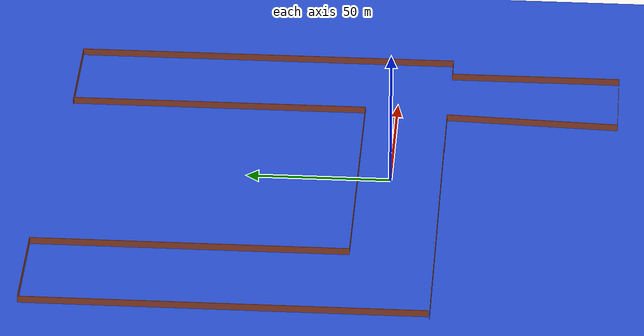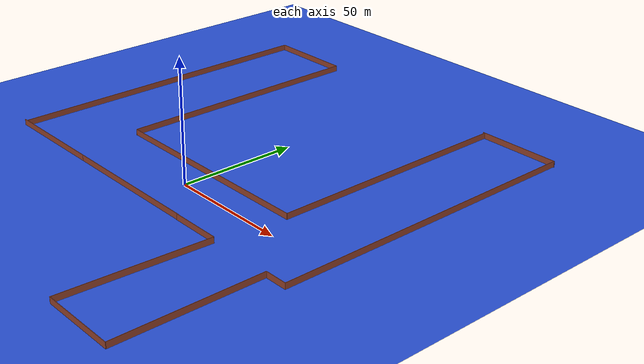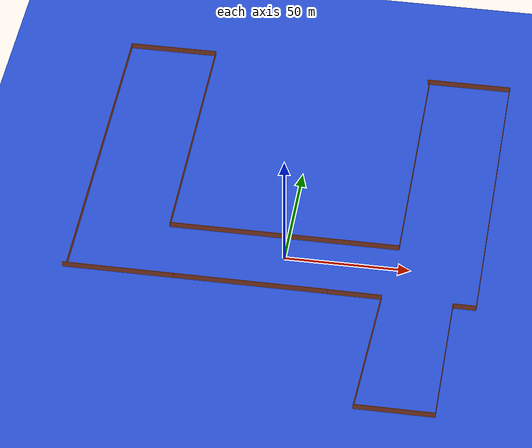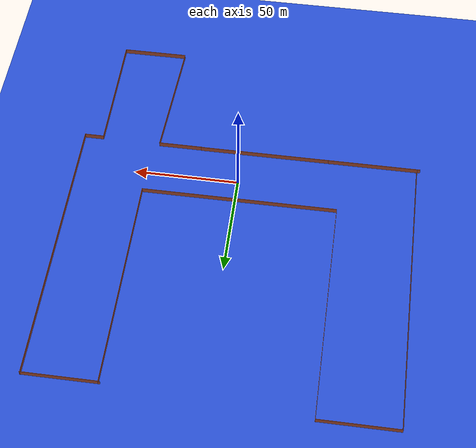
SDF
<sdf version="1.7">
 <world name="default">
  <light name="sun" type="directional">
   <pose>0 0 10 0 -0 0</pose>
   <diffuse>0.8 0.8 0.8 1</diffuse>
   <specular>0.2 0.2 0.2 1</specular>
   <attenuation>
    <range>1000</range>
    <constant>0.9</constant>
    <linear>0.01</linear>
    <quadratic>0.001</quadratic>
   </attenuation>
   <direction>-0.5 0.1 -0.9</direction>
   <spot><inner_angle>0</inner_angle><outer_angle>0</outer_angle><falloff>0</falloff></spot>
  </light>
  <model name="ground_plane">
   <static>1</static>
   <link name="link">
    <collision name="collision">
     <geometry><plane><normal>0 0 1</normal><size>500 500</size></plane></geometry>
     <surface>
      <contact><collide_bitmask>65535</collide_bitmask></contact>
      <friction><ode><mu>100</mu><mu2>50</mu2></ode></friction>
     </surface>
    </collision>
    <visual name="visual">
     <cast_shadows>0</cast_shadows>
     <geometry><plane><normal>0 0 1</normal><size>500 500</size></plane></geometry>
     <material>
      <script><uri>file://media/materials/scripts/gazebo.material</uri><name>Gazebo/BlueTransparent</name></script>
     </material>
    </visual>
   </link>
  </model>
  <gravity>0 0 -9.8</gravity>
  <magnetic_field>6e-06 2.3e-05 -4.2e-05</magnetic_field>
  <atmosphere type="adiabatic"/>
  <physics type="ode">
   <max_step_size>0.001</max_step_size>
   <real_time_factor>1</real_time_factor>
   <real_time_update_rate>1000</real_time_update_rate>
  </physics>
  <scene>
   <ambient>0.4 0.4 0.4 1</ambient>
   <background>0.7 0.7 0.7 1</background>
   <shadows>1</shadows>
   <grid>0</grid>
  </scene>
  <spherical_coordinates>
   <surface_model>EARTH_WGS84</surface_model>
   <latitude_deg>0</latitude_deg>
   <longitude_deg>0</longitude_deg>
   <elevation>0</elevation>
   <heading_deg>0</heading_deg>
  </spherical_coordinates>
  <model name="canal1_0">
   <pose>1.06193 21.2725 0 0 -0 0</pose>
   <link name="Wall_0">
    <collision name="Wall_0_Collision">
     <geometry><box><size>62.25 0.15 2.5</size></box></geometry>
     <pose>0 0 1.25 0 -0 0</pose>
    </collision>
    <visual name="Wall_0_Visual">
     <pose>0 0 1.25 0 -0 0</pose>
     <geometry><box><size>62.25 0.15 2.5</size></box></geometry>
     <material>
      <script><uri>file://media/materials/scripts/gazebo.material</uri><name>Gazebo/Bricks</name></script>
      <ambient>1 1 1 1</ambient>
     </material>
     <meta><layer>0</layer></meta>
    </visual>
    <pose>-11.7789 -38.8909 0 0 -0 3.14159</pose>
   </link>
   <link name="Wall_1">
    <collision name="Wall_1_Collision">
     <geometry><box><size>44.5 0.15 2.5</size></box></geometry>
     <pose>0 0 1.25 0 -0 0</pose>
    </collision>
    <visual name="Wall_1_Visual">
     <pose>0 0 1.25 0 -0 0</pose>
     <geometry><box><size>44.5 0.15 2.5</size></box></geometry>
     <material>
      <script><uri>file://media/materials/scripts/gazebo.material</uri><name>Gazebo/Bricks</name></script>
      <ambient>1 1 1 1</ambient>
     </material>
     <meta><layer>0</layer></meta>
    </visual>
    <pose>-65.0039 -38.8909 0 0 -0 3.14159</pose>
   </link>
   <link name="Wall_10">
    <collision name="Wall_10_Collision">
     <geometry><box><size>9 0.15 2.5</size></box></geometry>
     <pose>0 0 1.25 0 -0 0</pose>
    </collision>
    <visual name="Wall_10_Visual">
     <pose>0 0 1.25 0 -0 0</pose>
     <geometry><box><size>9 0.15 2.5</size></box></geometry>
     <material>
      <script><uri>file://media/materials/scripts/gazebo.material</uri><name>Gazebo/Bricks</name></script>
      <ambient>1 1 1 1</ambient>
     </material>
     <meta><layer>0</layer></meta>
    </visual>
    <pose>72.6289 -39.6232 0 0 -0 3.14159</pose>
   </link>
   <link name="Wall_11">
    <collision name="Wall_11_Collision">
     <geometry><box><size>59.75 0.15 2.5</size></box></geometry>
     <pose>0 0 1.25 0 -0 0</pose>
    </collision>
    <visual name="Wall_11_Visual">
     <pose>0 0 1.25 0 -0 0</pose>
     <geometry><box><size>59.75 0.15 2.5</size></box></geometry>
     <material>
      <script><uri>file://media/materials/scripts/gazebo.material</uri><name>Gazebo/Bricks</name></script>
      <ambient>1 1 1 1</ambient>
     </material>
     <meta><layer>0</layer></meta>
    </visual>
    <pose>68.0789 -69.4232 0 0 -0 -1.5708</pose>
   </link>
   <link name="Wall_12">
    <collision name="Wall_12_Collision">
     <geometry><box><size>31.25 0.15 2.5</size></box></geometry>
     <pose>0 0 1.25 0 -0 0</pose>
    </collision>
    <visual name="Wall_12_Visual">
     <pose>0 0 1.25 0 -0 0</pose>
     <geometry><box><size>31.25 0.15 2.5</size></box></geometry>
     <material>
      <script><uri>file://media/materials/scripts/gazebo.material</uri><name>Gazebo/Bricks</name></script>
      <ambient>1 1 1 1</ambient>
     </material>
     <meta><layer>0</layer></meta>
    </visual>
    <pose>52.5289 -99.2232 0 0 -0 3.14159</pose>
   </link>
   <link name="Wall_13">
    <collision name="Wall_13_Collision">
     <geometry><box><size>60.4431 0.15 2.5</size></box></geometry>
     <pose>0 0 1.25 0 -0 0</pose>
    </collision>
    <visual name="Wall_13_Visual">
     <pose>0 0 1.25 0 -0 0</pose>
     <geometry><box><size>60.4431 0.15 2.5</size></box></geometry>
     <material>
      <script><uri>file://media/materials/scripts/gazebo.material</uri><name>Gazebo/Bricks</name></script>
      <ambient>1 1 1 1</ambient>
     </material>
     <meta><layer>0</layer></meta>
    </visual>
    <pose>38.4846 -69.1142 0 0 -0 1.52083</pose>
   </link>
   <link name="Wall_14">
    <collision name="Wall_14_Collision">
     <geometry><box><size>21.25 0.15 2.5</size></box></geometry>
     <pose>0 0 1.25 0 -0 0</pose>
    </collision>
    <visual name="Wall_14_Visual">
     <pose>0 0 1.25 0 -0 0</pose>
     <geometry><box><size>21.25 0.15 2.5</size></box></geometry>
     <material>
      <script><uri>file://media/materials/scripts/gazebo.material</uri><name>Gazebo/Bricks</name></script>
      <ambient>1 1 1 1</ambient>
     </material>
     <meta><layer>0</layer></meta>
    </visual>
    <pose>29.4403 -39.0053 0 0 -0 3.14159</pose>
   </link>
   <link name="Wall_3">
    <collision name="Wall_3_Collision">
     <geometry><box><size>137.75 0.15 2.5</size></box></geometry>
     <pose>0 0 1.25 0 -0 0</pose>
    </collision>
    <visual name="Wall_3_Visual">
     <pose>0 0 1.25 0 -0 0</pose>
     <geometry><box><size>137.75 0.15 2.5</size></box></geometry>
     <material>
      <script><uri>file://media/materials/scripts/gazebo.material</uri><name>Gazebo/Bricks</name></script>
      <ambient>1 1 1 1</ambient>
     </material>
     <meta><layer>0</layer></meta>
    </visual>
    <pose>-85.6211 30.4268 0 0 -0 1.5708</pose>
   </link>
   <link name="Wall_4">
    <collision name="Wall_4_Collision">
     <geometry><box><size>36.5 0.15 2.5</size></box></geometry>
     <pose>0 0 1.25 0 -0 0</pose>
    </collision>
    <visual name="Wall_4_Visual">
     <pose>0 0 1.25 0 -0 0</pose>
     <geometry><box><size>36.5 0.15 2.5</size></box></geometry>
     <material>
      <script><uri>file://media/materials/scripts/gazebo.material</uri><name>Gazebo/Bricks</name></script>
      <ambient>1 1 1 1</ambient>
     </material>
     <meta><layer>0</layer></meta>
    </visual>
    <pose>-67.4461 99.2268 0 0 -0 0</pose>
   </link>
   <link name="Wall_5">
    <collision name="Wall_5_Collision">
     <geometry><box><size>109.25 0.15 2.5</size></box></geometry>
     <pose>0 0 1.25 0 -0 0</pose>
    </collision>
    <visual name="Wall_5_Visual">
     <pose>0 0 1.25 0 -0 0</pose>
     <geometry><box><size>109.25 0.15 2.5</size></box></geometry>
     <material>
      <script><uri>file://media/materials/scripts/gazebo.material</uri><name>Gazebo/Bricks</name></script>
      <ambient>1 1 1 1</ambient>
     </material>
     <meta><layer>0</layer></meta>
    </visual>
    <pose>-49.2711 44.6768 0 0 -0 -1.5708</pose>
   </link>
   <link name="Wall_6">
    <collision name="Wall_6_Collision">
     <geometry><box><size>92.75 0.15 2.5</size></box></geometry>
     <pose>0 0 1.25 0 -0 0</pose>
    </collision>
    <visual name="Wall_6_Visual">
     <pose>0 0 1.25 0 -0 0</pose>
     <geometry><box><size>92.75 0.15 2.5</size></box></geometry>
     <material>
      <script><uri>file://media/materials/scripts/gazebo.material</uri><name>Gazebo/Bricks</name></script>
      <ambient>1 1 1 1</ambient>
     </material>
     <meta><layer>0</layer></meta>
    </visual>
    <pose>-2.97114 -9.87317 0 0 -0 0</pose>
   </link>
   <link name="Wall_7">
    <collision name="Wall_7_Collision">
     <geometry><box><size>104 0.15 2.5</size></box></geometry>
     <pose>0 0 1.25 0 -0 0</pose>
    </collision>
    <visual name="Wall_7_Visual">
     <pose>0 0 1.25 0 -0 0</pose>
     <geometry><box><size>104 0.15 2.5</size></box></geometry>
     <material>
      <script><uri>file://media/materials/scripts/gazebo.material</uri><name>Gazebo/Bricks</name></script>
      <ambient>1 1 1 1</ambient>
     </material>
     <meta><layer>0</layer></meta>
    </visual>
    <pose>43.3289 42.0518 0 0 -0 1.5708</pose>
   </link>
   <link name="Wall_8">
    <collision name="Wall_8_Collision">
     <geometry><box><size>35 0.15 2.5</size></box></geometry>
     <pose>0 0 1.25 0 -0 0</pose>
    </collision>
    <visual name="Wall_8_Visual">
     <pose>0 0 1.25 0 -0 0</pose>
     <geometry><box><size>35 0.15 2.5</size></box></geometry>
     <material>
      <script><uri>file://media/materials/scripts/gazebo.material</uri><name>Gazebo/Bricks</name></script>
      <ambient>1 1 1 1</ambient>
     </material>
     <meta><layer>0</layer></meta>
    </visual>
    <pose>60 93.9768 0 0 -0 0</pose>
   </link>
   <link name="Wall_9">
    <collision name="Wall_9_Collision">
     <geometry><box><size>133.75 0.15 2.5</size></box></geometry>
     <pose>0 0 1.25 0 -0 0</pose>
    </collision>
    <visual name="Wall_9_Visual">
     <pose>0 0 1.25 0 -0 0</pose>
     <geometry><box><size>133.75 0.15 2.5</size></box></geometry>
     <material>
      <script><uri>file://media/materials/scripts/gazebo.material</uri><name>Gazebo/Bricks</name></script>
      <ambient>1 1 1 1</ambient>
     </material>
     <meta><layer>0</layer></meta>
    </visual>
    <pose>77.1789 27.1768 0 0 -0 -1.5708</pose>
   </link>
   <static>1</static>
  </model>
 </world>
</sdf>
